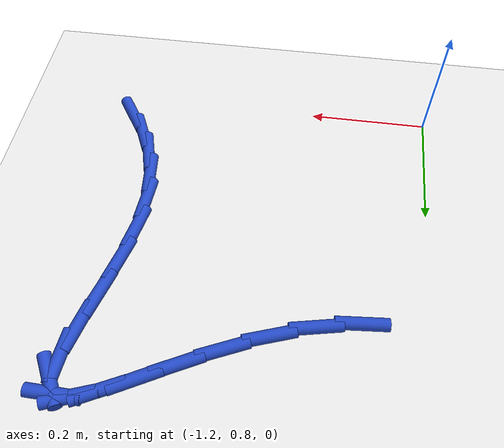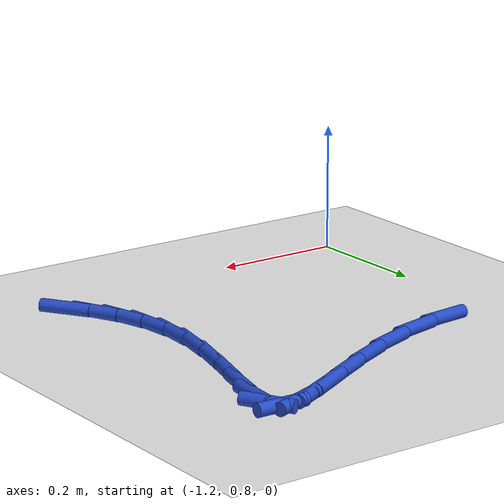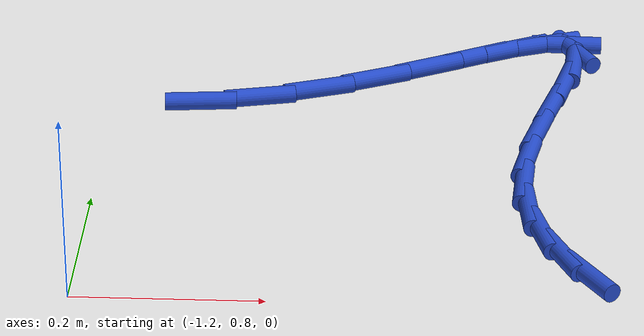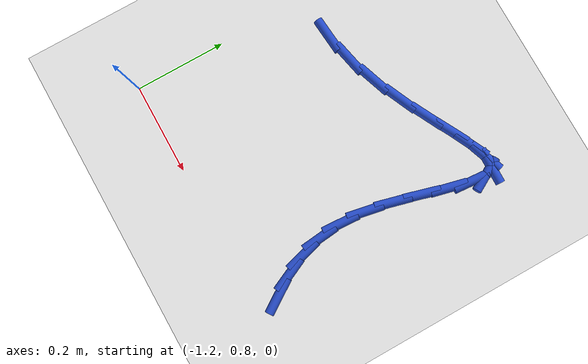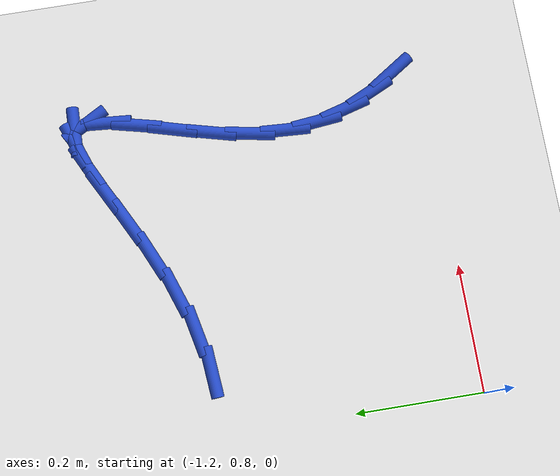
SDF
<sdf version="1.6">
 <world name="default">
  <model name="ground_plane">
   <static>1</static>
   <link name="link">
    <collision name="collision">
     <geometry><plane><normal>0 0 1</normal><size>100 100</size></plane></geometry>
     <surface><friction><ode><mu>100</mu><mu2>50</mu2></ode></friction></surface>
    </collision>
    <visual name="visual">
     <cast_shadows>0</cast_shadows>
     <geometry><plane><normal>0 0 1</normal><size>100 100</size></plane></geometry>
     <material>
      <script><uri>file://media/materials/scripts/gazebo.material</uri><name>Gazebo/WhiteGlow</name></script>
     </material>
    </visual>
   </link>
  </model>
  <model name="line">
   <link name="link_22">
    <pose>-0.6748208882698594 0.8485929523479212 0.01 0 1.57 -0.9840809942317578</pose>
    <collision name="collision">
     <geometry><cylinder><radius>0.01</radius><length>0.08</length></cylinder></geometry>
    </collision>
    <visual name="visual">
     <material>
      <script><name>Gazebo/Blue</name><uri>file://media/materials/scripts/gazebo.material</uri></script>
     </material>
     <geometry><cylinder><radius>0.01</radius><length>0.08</length></cylinder></geometry>
    </visual>
   </link>
   <link name="link_23">
    <pose>-0.7016528658767949 0.8889533910792238 0.01 0 1.57 -1.1327497866986338</pose>
    <collision name="collision">
     <geometry><cylinder><radius>0.01</radius><length>0.08</length></cylinder></geometry>
    </collision>
    <visual name="visual">
     <material>
      <script><name>Gazebo/Blue</name><uri>file://media/materials/scripts/gazebo.material</uri></script>
     </material>
     <geometry><cylinder><radius>0.01</radius><length>0.08</length></cylinder></geometry>
    </visual>
   </link>
   <link name="link_24">
    <pose>-0.722142506331851 0.9326976313991041 0.01 0 1.57 -1.2972988642377445</pose>
    <collision name="collision">
     <geometry><cylinder><radius>0.01</radius><length>0.08</length></cylinder></geometry>
    </collision>
    <visual name="visual">
     <material>
      <script><name>Gazebo/Blue</name><uri>file://media/materials/scripts/gazebo.material</uri></script>
     </material>
     <geometry><cylinder><radius>0.01</radius><length>0.08</length></cylinder></geometry>
    </visual>
   </link>
   <link name="link_25">
    <pose>-0.7354862978323973 0.9802644764680052 0.01 0 1.57 -1.4670869333536785</pose>
    <collision name="collision">
     <geometry><cylinder><radius>0.01</radius><length>0.08</length></cylinder></geometry>
    </collision>
    <visual name="visual">
     <material>
      <script><name>Gazebo/Blue</name><uri>file://media/materials/scripts/gazebo.material</uri></script>
     </material>
     <geometry><cylinder><radius>0.01</radius><length>0.08</length></cylinder></geometry>
    </visual>
   </link>
   <link name="link_26">
    <pose>-0.7408807285758041 1.0320927294463704 0.01 0 1.57 1.5115718175551986</pose>
    <collision name="collision">
     <geometry><cylinder><radius>0.01</radius><length>0.08</length></cylinder></geometry>
    </collision>
    <visual name="visual">
     <material>
      <script><name>Gazebo/Blue</name><uri>file://media/materials/scripts/gazebo.material</uri></script>
     </material>
     <geometry><cylinder><radius>0.01</radius><length>0.08</length></cylinder></geometry>
    </visual>
   </link>
   <link name="link_27">
    <pose>-0.7375293241366412 1.0886146857738823 0.01 0 1.57 1.3831997076289502</pose>
    <collision name="collision">
     <geometry><cylinder><radius>0.01</radius><length>0.08</length></cylinder></geometry>
    </collision>
    <visual name="visual">
     <material>
      <script><name>Gazebo/Blue</name><uri>file://media/materials/scripts/gazebo.material</uri></script>
     </material>
     <geometry><cylinder><radius>0.01</radius><length>0.08</length></cylinder></geometry>
    </visual>
   </link>
   <link name="link_28">
    <pose>-0.7260803915679791 1.1489265984761414 0.01 0 1.57 1.3158758738875893</pose>
    <collision name="collision">
     <geometry><cylinder><radius>0.01</radius><length>0.08</length></cylinder></geometry>
    </collision>
    <visual name="visual">
     <material>
      <script><name>Gazebo/Blue</name><uri>file://media/materials/scripts/gazebo.material</uri></script>
     </material>
     <geometry><cylinder><radius>0.01</radius><length>0.08</length></cylinder></geometry>
    </visual>
   </link>
   <link name="link_29">
    <pose>-0.7103828869187819 1.2091649630827312 0.01 0 1.57 1.2975483605151854</pose>
    <collision name="collision">
     <geometry><cylinder><radius>0.01</radius><length>0.08</length></cylinder></geometry>
    </collision>
    <visual name="visual">
     <material>
      <script><name>Gazebo/Blue</name><uri>file://media/materials/scripts/gazebo.material</uri></script>
     </material>
     <geometry><cylinder><radius>0.01</radius><length>0.08</length></cylinder></geometry>
    </visual>
   </link>
   <link name="link_30">
    <pose>-0.6947153157893236 1.2650690549013248 0.01 0 1.57 1.3351524285173113</pose>
    <collision name="collision">
     <geometry><cylinder><radius>0.01</radius><length>0.08</length></cylinder></geometry>
    </collision>
    <visual name="visual">
     <material>
      <script><name>Gazebo/Blue</name><uri>file://media/materials/scripts/gazebo.material</uri></script>
     </material>
     <geometry><cylinder><radius>0.01</radius><length>0.08</length></cylinder></geometry>
    </visual>
   </link>
   <link name="link_31">
    <pose>-0.6833561837798791 1.312378149239597 0.01 0 1.57 1.4905072942985023</pose>
    <collision name="collision">
     <geometry><cylinder><radius>0.01</radius><length>0.08</length></cylinder></geometry>
    </collision>
    <visual name="visual">
     <material>
      <script><name>Gazebo/Blue</name><uri>file://media/materials/scripts/gazebo.material</uri></script>
     </material>
     <geometry><cylinder><radius>0.01</radius><length>0.08</length></cylinder></geometry>
    </visual>
   </link>
   <link name="link_32">
    <pose>-0.6805839964907223 1.3468315214052202 0.01 0 1.57 -1.054722958687675</pose>
    <collision name="collision">
     <geometry><cylinder><radius>0.01</radius><length>0.08</length></cylinder></geometry>
    </collision>
    <visual name="visual">
     <material>
      <script><name>Gazebo/Blue</name><uri>file://media/materials/scripts/gazebo.material</uri></script>
     </material>
     <geometry><cylinder><radius>0.01</radius><length>0.08</length></cylinder></geometry>
    </visual>
   </link>
   <link name="link_33">
    <pose>-0.6905287214718429 1.3643596019786333 0.01 0 1.57 -0.021457759578437773</pose>
    <collision name="collision">
     <geometry><cylinder><radius>0.01</radius><length>0.08</length></cylinder></geometry>
    </collision>
    <visual name="visual">
     <material>
      <script><name>Gazebo/Blue</name><uri>file://media/materials/scripts/gazebo.material</uri></script>
     </material>
     <geometry><cylinder><radius>0.01</radius><length>0.08</length></cylinder></geometry>
    </visual>
   </link>
   <link name="link_34">
    <pose>-0.7142311774067759 1.3648682816532844 0.01 0 1.57 0.3465531213698885</pose>
    <collision name="collision">
     <geometry><cylinder><radius>0.01</radius><length>0.08</length></cylinder></geometry>
    </collision>
    <visual name="visual">
     <material>
      <script><name>Gazebo/Blue</name><uri>file://media/materials/scripts/gazebo.material</uri></script>
     </material>
     <geometry><cylinder><radius>0.01</radius><length>0.08</length></cylinder></geometry>
    </visual>
   </link>
   <link name="link_35">
    <pose>-0.7498145808449191 1.3520181458334757 0.01 0 1.57 0.4577317803803484</pose>
    <collision name="collision">
     <geometry><cylinder><radius>0.01</radius><length>0.08</length></cylinder></geometry>
    </collision>
    <visual name="visual">
     <material>
      <script><name>Gazebo/Blue</name><uri>file://media/materials/scripts/gazebo.material</uri></script>
     </material>
     <geometry><cylinder><radius>0.01</radius><length>0.08</length></cylinder></geometry>
    </visual>
   </link>
   <link name="link_36">
    <pose>-0.795287954743603 1.329616736930131 0.01 0 1.57 0.48527604367075133</pose>
    <collision name="collision">
     <geometry><cylinder><radius>0.01</radius><length>0.08</length></cylinder></geometry>
    </collision>
    <visual name="visual">
     <material>
      <script><name>Gazebo/Blue</name><uri>file://media/materials/scripts/gazebo.material</uri></script>
     </material>
     <geometry><cylinder><radius>0.01</radius><length>0.08</length></cylinder></geometry>
    </visual>
   </link>
   <link name="link_37">
    <pose>-0.8486603220601575 1.3014715973541744 0.01 0 1.57 0.4695830852292554</pose>
    <collision name="collision">
     <geometry><cylinder><radius>0.01</radius><length>0.08</length></cylinder></geometry>
    </collision>
    <visual name="visual">
     <material>
      <script><name>Gazebo/Blue</name><uri>file://media/materials/scripts/gazebo.material</uri></script>
     </material>
     <geometry><cylinder><radius>0.01</radius><length>0.08</length></cylinder></geometry>
    </visual>
   </link>
   <link name="link_38">
    <pose>-0.9079407057519127 1.2713902695165296 0.01 0 1.57 0.4198382427069961</pose>
    <collision name="collision">
     <geometry><cylinder><radius>0.01</radius><length>0.08</length></cylinder></geometry>
    </collision>
    <visual name="visual">
     <material>
      <script><name>Gazebo/Blue</name><uri>file://media/materials/scripts/gazebo.material</uri></script>
     </material>
     <geometry><cylinder><radius>0.01</radius><length>0.08</length></cylinder></geometry>
    </visual>
   </link>
   <link name="link_39">
    <pose>-0.9711381287761987 1.24318029582812 0.01 0 1.57 0.33308429898072217</pose>
    <collision name="collision">
     <geometry><cylinder><radius>0.01</radius><length>0.08</length></cylinder></geometry>
    </collision>
    <visual name="visual">
     <material>
      <script><name>Gazebo/Blue</name><uri>file://media/materials/scripts/gazebo.material</uri></script>
     </material>
     <geometry><cylinder><radius>0.01</radius><length>0.08</length></cylinder></geometry>
    </visual>
   </link>
   <link name="link_40">
    <pose>-1.0362616140903458 1.2206492186998699 0.01 0 1.57 0.20851420240404975</pose>
    <collision name="collision">
     <geometry><cylinder><radius>0.01</radius><length>0.08</length></cylinder></geometry>
    </collision>
    <visual name="visual">
     <material>
      <script><name>Gazebo/Blue</name><uri>file://media/materials/scripts/gazebo.material</uri></script>
     </material>
     <geometry><cylinder><radius>0.01</radius><length>0.08</length></cylinder></geometry>
    </visual>
   </link>
   <link name="link_41">
    <pose>-1.1015689173653462 1.2068308700375336 0.01 0 1.57 0.08446068056832406</pose>
    <collision name="collision">
     <geometry><cylinder><radius>0.01</radius><length>0.08</length></cylinder></geometry>
    </collision>
    <visual name="visual">
     <material>
      <script><name>Gazebo/Blue</name><uri>file://media/materials/scripts/gazebo.material</uri></script>
     </material>
     <geometry><cylinder><radius>0.01</radius><length>0.08</length></cylinder></geometry>
    </visual>
   </link>
  </model>
 </world>
</sdf>
